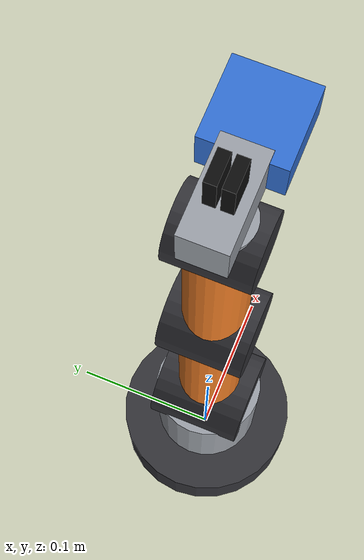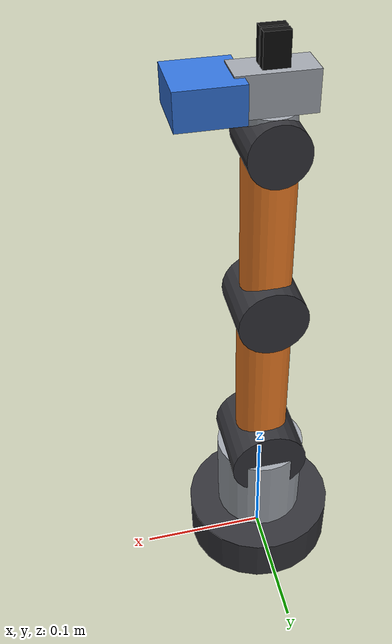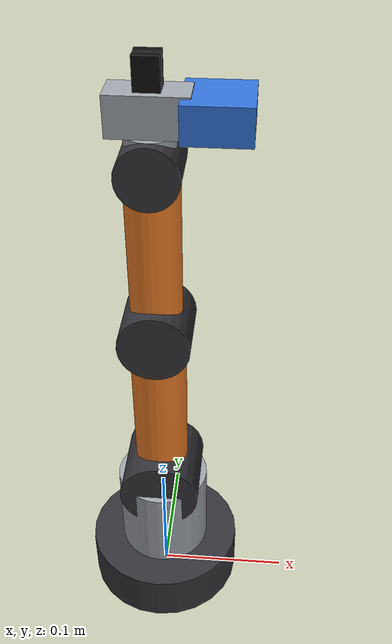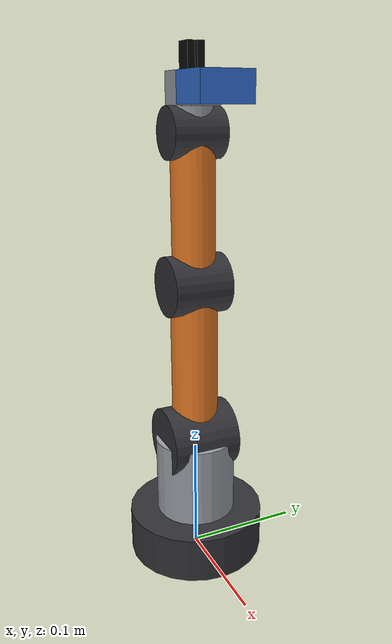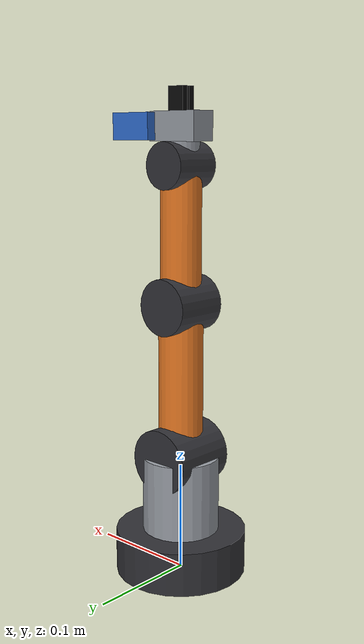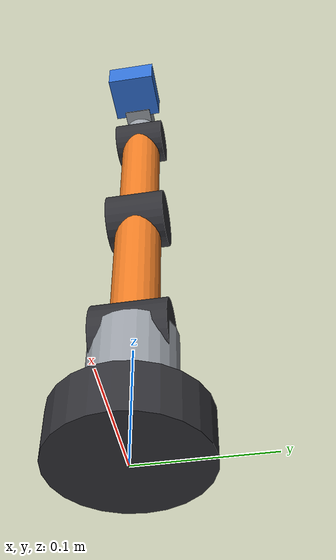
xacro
<?xml version="1.0"?>
<robot name="arm" xmlns:xacro="http://www.ros.org/wiki/xacro">

  <!-- ===================== Dimensions (edit these) ===================== -->
  <xacro:property name="base_height"       value="0.040"/>  <!-- table to base-yaw joint -->
  <xacro:property name="turret_height"     value="0.070"/>  <!-- base-yaw joint to shoulder axis (total 110 mm) -->
  <xacro:property name="upper_arm_length"  value="0.140"/>  <!-- shoulder to elbow -->
  <xacro:property name="forearm_length"    value="0.120"/>  <!-- elbow to wrist pitch -->
  <xacro:property name="wrist_length"      value="0.020"/>  <!-- wrist pitch to wrist roll -->
  <xacro:property name="gripper_length"    value="0.025"/>  <!-- wrist roll to finger base -->
  <xacro:property name="finger_length"     value="0.020"/>  <!-- finger base to fingertip -->
  <!-- Wrist pitch to fingertip = 20 + 25 + 20 = 65 mm -->

  <xacro:property name="base_radius"       value="0.060"/>
  <xacro:property name="turret_radius"     value="0.035"/>
  <xacro:property name="upper_arm_radius"  value="0.020"/>
  <xacro:property name="forearm_radius"    value="0.018"/>
  <xacro:property name="wrist_radius"      value="0.016"/>

  <!-- ===================== Masses (servo = 0.055 kg) ===================== -->
  <xacro:property name="base_mass"       value="0.500"/>  <!-- base, clamp, electronics -->
  <xacro:property name="turret_mass"     value="0.150"/>  <!-- shoulder servo + big pulley -->
  <xacro:property name="upper_arm_mass"  value="0.115"/>  <!-- link + elbow servo -->
  <xacro:property name="forearm_mass"    value="0.105"/>  <!-- link + wrist pitch servo -->
  <xacro:property name="wrist_mass"      value="0.085"/>  <!-- link + wrist roll servo -->
  <xacro:property name="gripper_mass"    value="0.115"/>  <!-- gripper servo + body + camera -->
  <xacro:property name="finger_mass"     value="0.010"/>

  <!-- ===================== Joint limits ===================== -->
  <!-- Shoulder range depends on belt ratio: 2:1 gives 180 deg, 3:1 gives 120 deg -->
  <xacro:property name="shoulder_range_deg" value="180"/>
  <xacro:property name="shoulder_ratio"     value="2.0"/>

  <!-- STS3215 12 V: rated 10 kg*cm = 0.98 N*m, 0.222 s per 60 deg = 4.7 rad/s -->
  <xacro:property name="servo_effort"   value="0.98"/>
  <xacro:property name="servo_velocity" value="4.7"/>

  <xacro:property name="deg" value="${pi/180}"/>

  <!-- ===================== Materials ===================== -->
  <material name="dark">   <color rgba="0.20 0.20 0.22 1.0"/></material>
  <material name="grey">   <color rgba="0.62 0.64 0.67 1.0"/></material>
  <material name="orange"> <color rgba="0.95 0.50 0.15 1.0"/></material>
  <material name="blue">   <color rgba="0.20 0.45 0.85 1.0"/></material>
  <material name="black">  <color rgba="0.05 0.05 0.05 1.0"/></material>

  <!-- ===================== Macros ===================== -->

  <!-- Solid-cylinder inertia, cylinder along its local Z, origin at its centre -->
  <xacro:macro name="cylinder_inertial" params="mass radius length z_offset">
    <inertial>
      <origin xyz="0 0 ${z_offset}" rpy="0 0 0"/>
      <mass value="${mass}"/>
      <inertia ixx="${mass*(3*radius*radius + length*length)/12}" ixy="0" ixz="0"
               iyy="${mass*(3*radius*radius + length*length)/12}" iyz="0"
               izz="${mass*radius*radius/2}"/>
    </inertial>
  </xacro:macro>

  <!-- Solid-box inertia, origin at its centre -->
  <xacro:macro name="box_inertial" params="mass x y z z_offset">
    <inertial>
      <origin xyz="0 0 ${z_offset}" rpy="0 0 0"/>
      <mass value="${mass}"/>
      <inertia ixx="${mass*(y*y + z*z)/12}" ixy="0" ixz="0"
               iyy="${mass*(x*x + z*z)/12}" iyz="0"
               izz="${mass*(x*x + y*y)/12}"/>
    </inertial>
  </xacro:macro>

  <!-- A link drawn as a cylinder running from its origin up +Z by `length` -->
  <xacro:macro name="cylinder_link" params="name radius length mass material">
    <link name="${name}">
      <visual>
        <origin xyz="0 0 ${length/2}" rpy="0 0 0"/>
        <geometry><cylinder radius="${radius}" length="${length}"/></geometry>
        <material name="${material}"/>
      </visual>
      <collision>
        <origin xyz="0 0 ${length/2}" rpy="0 0 0"/>
        <geometry><cylinder radius="${radius}" length="${length}"/></geometry>
      </collision>
      <xacro:cylinder_inertial mass="${mass}" radius="${radius}" length="${length}" z_offset="${length/2}"/>
    </link>
  </xacro:macro>

  <!-- A visual-only "hub" drawn across a pitch joint so joints are easy to see -->
  <xacro:macro name="joint_hub" params="parent radius width">
    <link name="${parent}_hub">
      <visual>
        <origin xyz="0 0 0" rpy="${pi/2} 0 0"/>
        <geometry><cylinder radius="${radius}" length="${width}"/></geometry>
        <material name="dark"/>
      </visual>
    </link>
    <joint name="${parent}_hub_fixed" type="fixed">
      <parent link="${parent}"/>
      <child link="${parent}_hub"/>
      <origin xyz="0 0 0" rpy="0 0 0"/>
    </joint>
  </xacro:macro>

  <!-- ===================== Links and joints ===================== -->

  <!-- Base: fixed to the table -->
  <xacro:cylinder_link name="base_link" radius="${base_radius}" length="${base_height}"
                       mass="${base_mass}" material="dark"/>

  <!-- Joint 1: base yaw -->
  <xacro:cylinder_link name="turret_link" radius="${turret_radius}" length="${turret_height}"
                       mass="${turret_mass}" material="grey"/>
  <joint name="base_yaw" type="revolute">
    <parent link="base_link"/>
    <child link="turret_link"/>
    <origin xyz="0 0 ${base_height}" rpy="0 0 0"/>
    <axis xyz="0 0 1"/>
    <limit lower="${-160*deg}" upper="${160*deg}" effort="${servo_effort}" velocity="${servo_velocity}"/>
  </joint>

  <!-- Joint 2: shoulder pitch (belt-driven, ratio in shoulder_ratio) -->
  <xacro:cylinder_link name="upper_arm_link" radius="${upper_arm_radius}" length="${upper_arm_length}"
                       mass="${upper_arm_mass}" material="orange"/>
  <joint name="shoulder_pitch" type="revolute">
    <parent link="turret_link"/>
    <child link="upper_arm_link"/>
    <origin xyz="0 0 ${turret_height}" rpy="0 0 0"/>
    <axis xyz="0 1 0"/>
    <limit lower="${-shoulder_range_deg/2*deg}" upper="${shoulder_range_deg/2*deg}"
           effort="${servo_effort*shoulder_ratio}" velocity="${servo_velocity/shoulder_ratio}"/>
  </joint>
  <xacro:joint_hub parent="upper_arm_link" radius="0.030" width="0.060"/>

  <!-- Joint 3: elbow pitch -->
  <xacro:cylinder_link name="forearm_link" radius="${forearm_radius}" length="${forearm_length}"
                       mass="${forearm_mass}" material="orange"/>
  <joint name="elbow_pitch" type="revolute">
    <parent link="upper_arm_link"/>
    <child link="forearm_link"/>
    <origin xyz="0 0 ${upper_arm_length}" rpy="0 0 0"/>
    <axis xyz="0 1 0"/>
    <limit lower="${-140*deg}" upper="${140*deg}" effort="${servo_effort}" velocity="${servo_velocity}"/>
  </joint>
  <xacro:joint_hub parent="forearm_link" radius="0.025" width="0.050"/>

  <!-- Joint 4: wrist pitch -->
  <xacro:cylinder_link name="wrist_link" radius="${wrist_radius}" length="${wrist_length}"
                       mass="${wrist_mass}" material="grey"/>
  <joint name="wrist_pitch" type="revolute">
    <parent link="forearm_link"/>
    <child link="wrist_link"/>
    <origin xyz="0 0 ${forearm_length}" rpy="0 0 0"/>
    <axis xyz="0 1 0"/>
    <limit lower="${-100*deg}" upper="${100*deg}" effort="${servo_effort}" velocity="${servo_velocity}"/>
  </joint>
  <xacro:joint_hub parent="wrist_link" radius="0.020" width="0.044"/>

  <!-- Joint 5: wrist roll -->
  <link name="gripper_link">
    <visual>
      <origin xyz="0 0 ${gripper_length/2}" rpy="0 0 0"/>
      <geometry><box size="0.050 0.024 ${gripper_length}"/></geometry>
      <material name="grey"/>
    </visual>
    <collision>
      <origin xyz="0 0 ${gripper_length/2}" rpy="0 0 0"/>
      <geometry><box size="0.050 0.024 ${gripper_length}"/></geometry>
    </collision>
    <xacro:box_inertial mass="${gripper_mass}" x="0.050" y="0.024" z="${gripper_length}" z_offset="${gripper_length/2}"/>
  </link>
  <joint name="wrist_roll" type="revolute">
    <parent link="wrist_link"/>
    <child link="gripper_link"/>
    <origin xyz="0 0 ${wrist_length}" rpy="0 0 0"/>
    <axis xyz="0 0 1"/>
    <limit lower="${-160*deg}" upper="${160*deg}" effort="${servo_effort}" velocity="${servo_velocity}"/>
  </joint>

  <!-- Gripper fingers: one driven joint, the other mirrors it (mimic) -->
  <xacro:macro name="finger" params="side">
    <link name="finger_${side}_link">
      <visual>
        <origin xyz="0 0 ${finger_length/2}" rpy="0 0 0"/>
        <geometry><box size="0.016 0.006 ${finger_length}"/></geometry>
        <material name="black"/>
      </visual>
      <collision>
        <origin xyz="0 0 ${finger_length/2}" rpy="0 0 0"/>
        <geometry><box size="0.016 0.006 ${finger_length}"/></geometry>
      </collision>
      <xacro:box_inertial mass="${finger_mass}" x="0.016" y="0.006" z="${finger_length}" z_offset="${finger_length/2}"/>
    </link>
  </xacro:macro>

  <xacro:finger side="left"/>
  <xacro:finger side="right"/>

  <joint name="gripper_left" type="prismatic">
    <parent link="gripper_link"/>
    <child link="finger_left_link"/>
    <origin xyz="0 0.004 ${gripper_length}" rpy="0 0 0"/>
    <axis xyz="0 1 0"/>
    <limit lower="0.0" upper="0.025" effort="20.0" velocity="0.05"/>
  </joint>

  <joint name="gripper_right" type="prismatic">
    <parent link="gripper_link"/>
    <child link="finger_right_link"/>
    <origin xyz="0 -0.004 ${gripper_length}" rpy="0 0 0"/>
    <axis xyz="0 -1 0"/>
    <limit lower="0.0" upper="0.025" effort="20.0" velocity="0.05"/>
    <mimic joint="gripper_left" multiplier="1.0" offset="0.0"/>
  </joint>

  <!-- Tool centre point: between the fingertips. Use this as MoveIt's end effector. -->
  <link name="tool0"/>
  <joint name="tool0_fixed" type="fixed">
    <parent link="gripper_link"/>
    <child link="tool0"/>
    <origin xyz="0 0 ${gripper_length + finger_length}" rpy="0 0 0"/>
  </joint>

  <!-- Wrist camera: mounted on the side of the gripper body, looking along the fingers -->
  <link name="camera_link">
    <visual>
      <origin xyz="0 0 0" rpy="0 0 0"/>
      <geometry><box size="0.023 0.042 0.042"/></geometry>
      <material name="blue"/>
    </visual>
    <collision>
      <origin xyz="0 0 0" rpy="0 0 0"/>
      <geometry><box size="0.023 0.042 0.042"/></geometry>
    </collision>
    <xacro:box_inertial mass="0.030" x="0.023" y="0.042" z="0.042" z_offset="0"/>
  </link>
  <!-- camera_link X axis = viewing direction, rotated to point along +Z of the gripper -->
  <joint name="camera_fixed" type="fixed">
    <parent link="gripper_link"/>
    <child link="camera_link"/>
    <origin xyz="0.040 0 ${gripper_length/2}" rpy="0 ${-pi/2} 0"/>
  </joint>

  <!-- Optical frame (Z forward, X right, Y down) used by camera drivers and image topics -->
  <link name="camera_optical_frame"/>
  <joint name="camera_optical_fixed" type="fixed">
    <parent link="camera_link"/>
    <child link="camera_optical_frame"/>
    <origin xyz="0 0 0" rpy="${-pi/2} 0 ${-pi/2}"/>
  </joint>

</robot>
